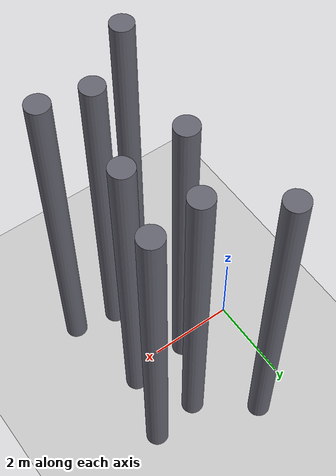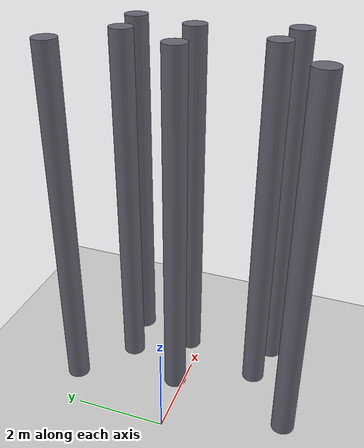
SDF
<?xml version="1.0" ?>
<sdf version="1.9">
  <world name="forest">

    <physics name="1ms" type="ignored">
      <max_step_size>0.001</max_step_size>
      <real_time_factor>1.0</real_time_factor>
    </physics>

    <plugin filename="gz-sim-physics-system"
            name="gz::sim::systems::Physics"/>
    <plugin filename="gz-sim-user-commands-system"
            name="gz::sim::systems::UserCommands"/>
    <plugin filename="gz-sim-scene-broadcaster-system"
            name="gz::sim::systems::SceneBroadcaster"/>
    <plugin filename="gz-sim-contact-system"
            name="gz::sim::systems::Contact"/>
    <plugin filename="gz-sim-imu-system"
            name="gz::sim::systems::Imu"/>
    <!-- Required for gpu_lidar to produce data. -->
    <plugin filename="gz-sim-sensors-system"
            name="gz::sim::systems::Sensors">
      <render_engine>ogre2</render_engine>
    </plugin>

    <gravity>0 0 -9.8</gravity>

    <light type="directional" name="sun">
      <cast_shadows>true</cast_shadows>
      <pose>0 0 10 0 0 0</pose>
      <diffuse>0.8 0.8 0.8 1</diffuse>
      <specular>0.2 0.2 0.2 1</specular>
      <direction>-0.5 0.1 -0.9</direction>
    </light>

    <model name="ground_plane">
      <static>true</static>
      <link name="link">
        <collision name="collision">
          <geometry><plane><normal>0 0 1</normal><size>100 100</size></plane></geometry>
        </collision>
        <visual name="visual">
          <geometry><plane><normal>0 0 1</normal><size>100 100</size></plane></geometry>
          <material>
            <ambient>0.8 0.8 0.8 1</ambient>
            <diffuse>0.8 0.8 0.8 1</diffuse>
          </material>
        </visual>
      </link>
    </model>

    <model name="cyl_0">
      <static>true</static>
      <pose>1.40 0.20 4.0 0 0 0</pose>
      <link name="link">
        <collision name="collision">
          <geometry><cylinder><radius>0.25</radius><length>8.0</length></cylinder></geometry>
        </collision>
        <visual name="visual">
          <geometry><cylinder><radius>0.25</radius><length>8.0</length></cylinder></geometry>
          <material><ambient>0.4 0.4 0.45 1</ambient><diffuse>0.4 0.4 0.45 1</diffuse></material>
        </visual>
      </link>
    </model>
    <model name="cyl_1">
      <static>true</static>
      <pose>2.10 1.55 4.0 0 0 0</pose>
      <link name="link">
        <collision name="collision">
          <geometry><cylinder><radius>0.25</radius><length>8.0</length></cylinder></geometry>
        </collision>
        <visual name="visual">
          <geometry><cylinder><radius>0.25</radius><length>8.0</length></cylinder></geometry>
          <material><ambient>0.4 0.4 0.45 1</ambient><diffuse>0.4 0.4 0.45 1</diffuse></material>
        </visual>
      </link>
    </model>
    <model name="cyl_2">
      <static>true</static>
      <pose>2.20 -1.50 4.0 0 0 0</pose>
      <link name="link">
        <collision name="collision">
          <geometry><cylinder><radius>0.25</radius><length>8.0</length></cylinder></geometry>
        </collision>
        <visual name="visual">
          <geometry><cylinder><radius>0.25</radius><length>8.0</length></cylinder></geometry>
          <material><ambient>0.4 0.4 0.45 1</ambient><diffuse>0.4 0.4 0.45 1</diffuse></material>
        </visual>
      </link>
    </model>
    <model name="cyl_3">
      <static>true</static>
      <pose>2.80 0.30 4.0 0 0 0</pose>
      <link name="link">
        <collision name="collision">
          <geometry><cylinder><radius>0.25</radius><length>8.0</length></cylinder></geometry>
        </collision>
        <visual name="visual">
          <geometry><cylinder><radius>0.25</radius><length>8.0</length></cylinder></geometry>
          <material><ambient>0.4 0.4 0.45 1</ambient><diffuse>0.4 0.4 0.45 1</diffuse></material>
        </visual>
      </link>
    </model>
    <model name="cyl_4">
      <static>true</static>
      <pose>3.20 1.70 4.0 0 0 0</pose>
      <link name="link">
        <collision name="collision">
          <geometry><cylinder><radius>0.25</radius><length>8.0</length></cylinder></geometry>
        </collision>
        <visual name="visual">
          <geometry><cylinder><radius>0.25</radius><length>8.0</length></cylinder></geometry>
          <material><ambient>0.4 0.4 0.45 1</ambient><diffuse>0.4 0.4 0.45 1</diffuse></material>
        </visual>
      </link>
    </model>
    <model name="cyl_5">
      <static>true</static>
      <pose>3.20 -1.70 4.0 0 0 0</pose>
      <link name="link">
        <collision name="collision">
          <geometry><cylinder><radius>0.25</radius><length>8.0</length></cylinder></geometry>
        </collision>
        <visual name="visual">
          <geometry><cylinder><radius>0.25</radius><length>8.0</length></cylinder></geometry>
          <material><ambient>0.4 0.4 0.45 1</ambient><diffuse>0.4 0.4 0.45 1</diffuse></material>
        </visual>
      </link>
    </model>
    <model name="cyl_6">
      <static>true</static>
      <pose>0.90 2.50 4.0 0 0 0</pose>
      <link name="link">
        <collision name="collision">
          <geometry><cylinder><radius>0.25</radius><length>8.0</length></cylinder></geometry>
        </collision>
        <visual name="visual">
          <geometry><cylinder><radius>0.25</radius><length>8.0</length></cylinder></geometry>
          <material><ambient>0.4 0.4 0.45 1</ambient><diffuse>0.4 0.4 0.45 1</diffuse></material>
        </visual>
      </link>
    </model>
    <model name="cyl_7">
      <static>true</static>
      <pose>0.90 -2.50 4.0 0 0 0</pose>
      <link name="link">
        <collision name="collision">
          <geometry><cylinder><radius>0.25</radius><length>8.0</length></cylinder></geometry>
        </collision>
        <visual name="visual">
          <geometry><cylinder><radius>0.25</radius><length>8.0</length></cylinder></geometry>
          <material><ambient>0.4 0.4 0.45 1</ambient><diffuse>0.4 0.4 0.45 1</diffuse></material>
        </visual>
      </link>
    </model>

  </world>
</sdf>
